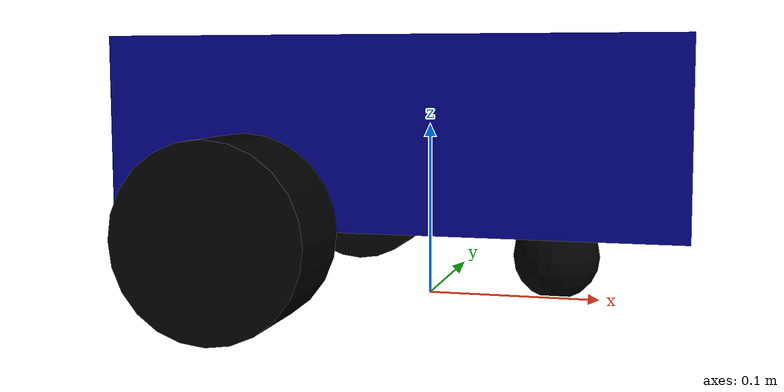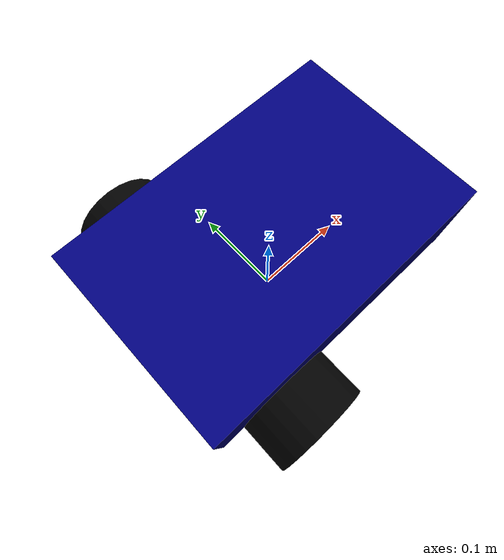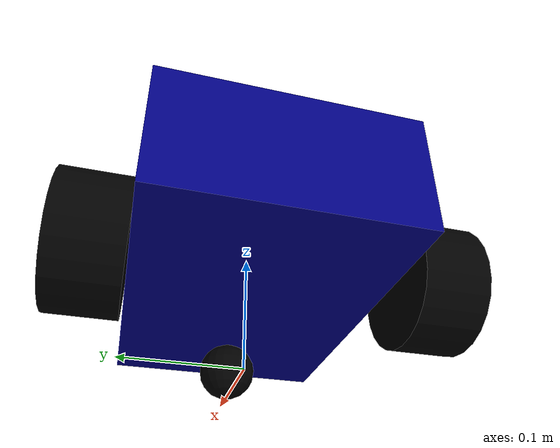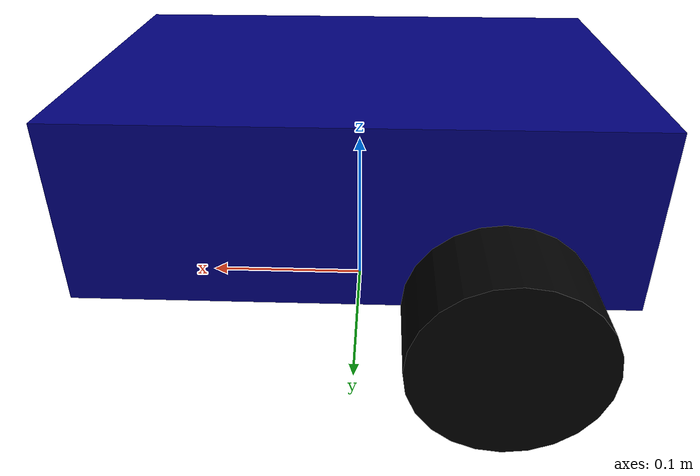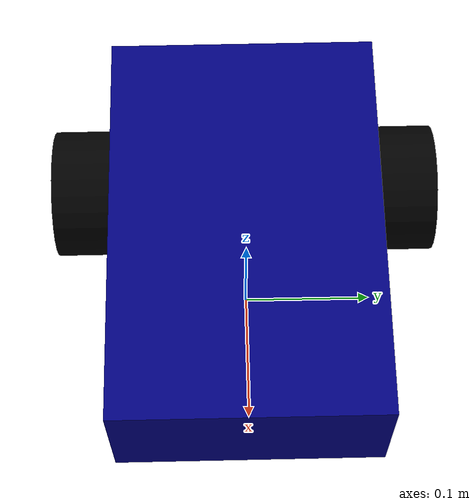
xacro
<?xml version="1.0"?>
<robot name="drive_robot" xmlns:xacro="http://wiki.ros.org/xacro" >

    <xacro:include filename="drive_robot_gazebo.xacro" />

    <link name="base_footprint"/>

    <link name="base_link">
        <visual>
            <geometry>
                <box size="0.3 0.2 0.1" />
            </geometry>
            <origin xyz="0 0 0" rpy="0 0 0" />
            <material name="blue">
                <color rgba="0 0 0.5 1" />
            </material>
        </visual>
        <collision name="collision">
            <geometry>
                <box size="0.3 0.2 0.1" />
            </geometry>
            <origin xyz="0 0 0" rpy="0 0 0" />
        </collision>
        <inertial>
            <origin xyz="0 0 0" rpy="0 0 0" />
            <mass value="2" />
            <inertia
                ixx="8.33e-03" ixy="0" ixz="0"
                iyy="1.667e-02" iyz="0"
                izz="2.1667e-02" />
        </inertial>
    </link>

    <link name="left_wheel">
        <visual>
            <geometry>
                <cylinder radius="0.05" length="0.05" />
            </geometry>
            <origin xyz="0 0 0" rpy="0 0 0" />
            <material name="black">
                <color rgba="0.0 0.0 0.0 1" />
            </material>
        </visual>
        <collision name="collision">
            <geometry>
                <cylinder radius="0.05" length="0.05" />
            </geometry>
            <origin xyz="0 0 0" rpy="0 0 0" />
        </collision>
        <inertial>
            <origin xyz="0 0 0" rpy="0 0 0" />
            <mass value="0.3" />
            <inertia
                ixx="2.5e-04" ixy="0" ixz="0"
                iyy="2.5e-04" iyz="0"
                izz="6.25e-05" />
        </inertial>
    </link>

    <link name="right_wheel">
        <inertial>
            <origin xyz="0 0 0" rpy="0 0 0" />
            <mass value="0.3" />
            <inertia
                ixx="2.5e-04" ixy="0" ixz="0"
                iyy="2.5e-04" iyz="0"
                izz="6.25e-05" />
        </inertial>
        <visual>
            <geometry>
                <cylinder radius="0.05" length="0.05" />
            </geometry>
            <origin xyz="0 0 0" rpy="0 0 0" />
            <material name="black">
                <color rgba="0.0 0.0 0.0 1" />
            </material>
        </visual>
        <collision name="collision">
            <geometry>
                <cylinder radius="0.05" length="0.05" />
            </geometry>
            <origin xyz="0 0 0" rpy="0 0 0" />
        </collision>
    </link>

    <link name="caster_wheel">
        <visual>
            <geometry>
                <sphere radius="0.025" />
            </geometry>
            <origin xyz="0 0 0" rpy="0 0 0" />
            <material name="black">
                <color rgba="0.0 0.0 0.0 1" />
            </material>
        </visual>
        <collision>
            <geometry>
                <sphere radius="0.025" />
            </geometry>
            <origin xyz="0 0 0" rpy="0 0 0" />
        </collision>
        <inertial>
            <origin xyz="0 0 0" rpy="0 0 0" />
            <mass value="0.2" />
            <inertia
                ixx="8.333e-05" ixy="0" ixz="0"
                iyy="8.333e-05" iyz="0"
                izz="8.333e-05" />
        </inertial>
    </link>

    <joint name="base_footprint_base_link_joint" type="fixed">
        <parent link="base_footprint"/>
        <child link="base_link"/>
        <origin xyz="0 0 0.1" rpy="0 0 0" />
    </joint>

    <joint name="base_link_left_wheel_joint" type="continuous">
        <parent link="base_link" />
        <child link="left_wheel" />
        <origin xyz="-0.075 0.125 -0.05" rpy="-1.5707 0 0" />
        <axis xyz="0 0 1" />
        <limit effort="500.0" velocity="20.0" />
        <dynamics damping="1.0" friction="0.1" />
    </joint>

    <joint name="base_link_right_wheel_joint" type="continuous">
        <parent link="base_link" />
        <child link="right_wheel" />
        <origin xyz="-0.075 -0.125 -0.05" rpy="-1.5707 0 0" />
        <axis xyz="0 0 1" />
        <limit effort="500.0" velocity="20.0" />
        <dynamics damping="1.0" friction="0.1" />
    </joint>

    <joint name="base_link_caster_wheel_joint" type="continuous">
        <parent link="base_link" />
        <child link="caster_wheel" />
        <origin xyz="0.075 0 -0.075" rpy="0 0 0" />
        <axis xyz="0 1 0" />
        <limit effort="500.0" velocity="20.0" />
        <dynamics damping="1.0" friction="0.0001" />
    </joint>

</robot>
